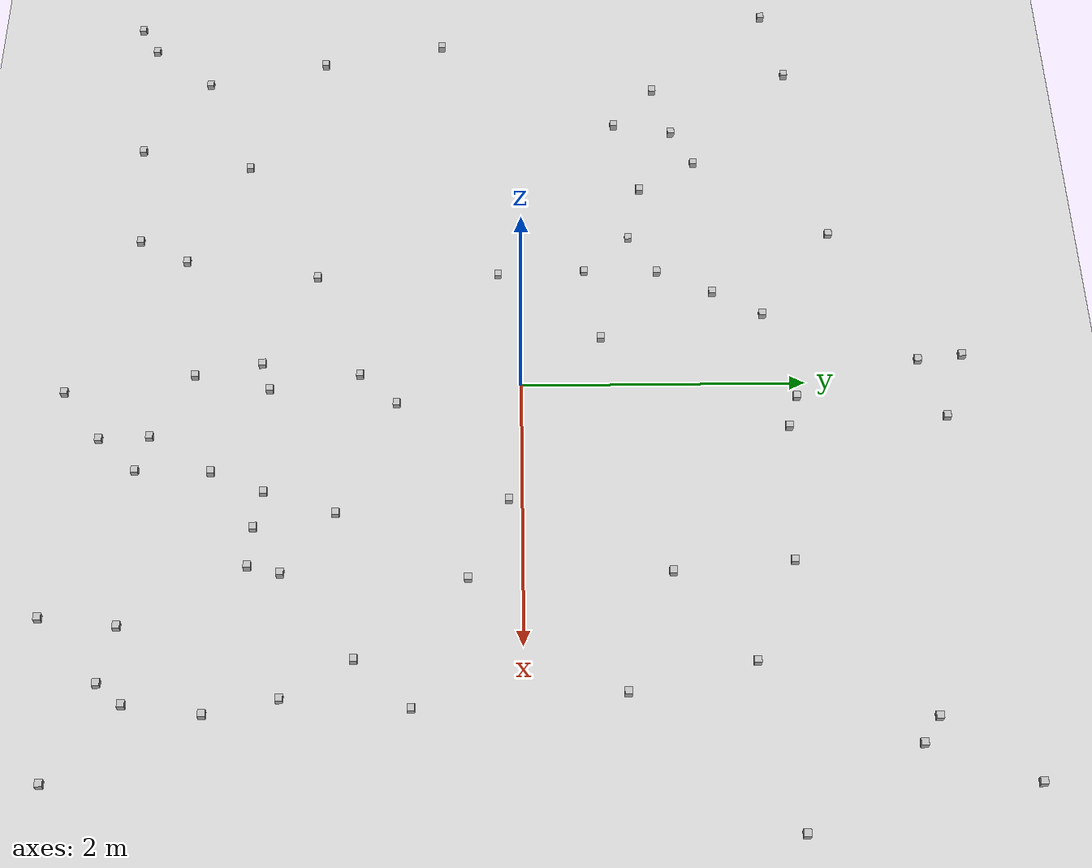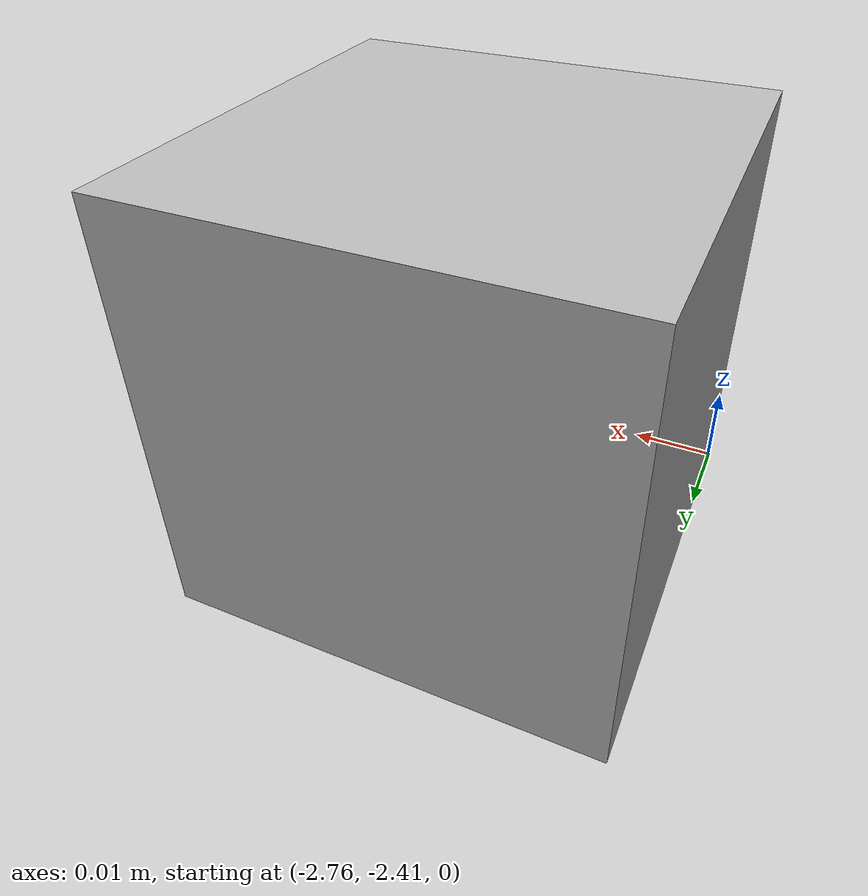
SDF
<sdf version="1.6">
 <world name="default">
  <model name="ground_plane">
   <static>1</static>
   <link name="link">
    <collision name="collision">
     <geometry><plane><normal>0 0 1</normal><size>100 100</size></plane></geometry>
     <surface><friction><ode><mu>100</mu><mu2>50</mu2></ode></friction></surface>
    </collision>
    <visual name="visual">
     <cast_shadows>0</cast_shadows>
     <geometry><plane><normal>0 0 1</normal><size>100 100</size></plane></geometry>
     <material>
      <script><uri>file://media/materials/scripts/gazebo.material</uri><name>Gazebo/Grey</name></script>
     </material>
    </visual>
   </link>
  </model>
  <light name="sun" type="directional">
   <pose>0 0 10 0 -0 0</pose>
   <diffuse>0.8 0.8 0.8 1</diffuse>
   <specular>0.1 0.1 0.1 1</specular>
   <attenuation>
    <range>1000</range>
    <constant>0.9</constant>
    <linear>0.01</linear>
    <quadratic>0.001</quadratic>
   </attenuation>
   <direction>-0.5 0.5 -1</direction>
  </light>
  <plugin name="SetupWorld" filename="libgazebo_plugins.so"/>
  <gravity>0 0 -9.8</gravity>
  <magnetic_field>6e-06 2.3e-05 -4.2e-05</magnetic_field>
  <atmosphere type="adiabatic"/>
  <physics name="default_physics" default="0" type="ode">
   <max_step_size>0.001</max_step_size>
   <real_time_factor>1</real_time_factor>
   <real_time_update_rate>1000</real_time_update_rate>
  </physics>
  <scene><ambient>0.4 0.4 0.4 1</ambient><background>0.7 0.7 0.7 1</background><shadows>1</shadows></scene>
  <spherical_coordinates>
   <surface_model>EARTH_WGS84</surface_model>
   <latitude_deg>0</latitude_deg>
   <longitude_deg>0</longitude_deg>
   <elevation>0</elevation>
   <heading_deg>0</heading_deg>
  </spherical_coordinates>
  <model name="at0">
   <static>0</static>
   <link name="link">
    <inertial>
     <mass>0.01</mass>
     <inertia><ixx>4e-05</ixx><ixy>0</ixy><ixz>0</ixz><iyy>4e-05</iyy><iyz>0</iyz><izz>4e-05</izz></inertia>
    </inertial>
    <visual name="visual">
     <geometry><box><size>0.05 0.05 0.05</size></box></geometry>
     <material>
      <script>
       <uri>model://at0/materials/scripts</uri>
       <uri>model://at0/materials/textures</uri>
       <name>at0/Diffuse</name>
      </script>
     </material>
    </visual>
    <collision name="collision">
     <geometry><box><size>0.05 0.05 0.05</size></box></geometry>
     <surface><friction><ode><mu>0.8</mu><mu2>0.7</mu2></ode></friction></surface>
    </collision>
   </link>
   <pose>-2.31328 0.718196 0.025 0 -0 0</pose>
  </model>
  <model name="at1">
   <static>0</static>
   <link name="link">
    <inertial>
     <mass>0.01</mass>
     <inertia><ixx>4e-05</ixx><ixy>0</ixy><ixz>0</ixz><iyy>4e-05</iyy><iyz>0</iyz><izz>4e-05</izz></inertia>
    </inertial>
    <visual name="visual">
     <geometry><box><size>0.05 0.05 0.05</size></box></geometry>
     <material>
      <script>
       <uri>model://at0/materials/scripts</uri>
       <uri>model://at0/materials/textures</uri>
       <name>at0/Diffuse</name>
      </script>
     </material>
    </visual>
    <collision name="collision">
     <geometry><box><size>0.05 0.05 0.05</size></box></geometry>
     <surface><friction><ode><mu>0.8</mu><mu2>0.7</mu2></ode></friction></surface>
    </collision>
   </link>
   <pose>-1.92508 -2.02939 0.025 0 -0 0</pose>
  </model>
  <model name="at2">
   <static>0</static>
   <link name="link">
    <inertial>
     <mass>0.01</mass>
     <inertia><ixx>4e-05</ixx><ixy>0</ixy><ixz>0</ixz><iyy>4e-05</iyy><iyz>0</iyz><izz>4e-05</izz></inertia>
    </inertial>
    <visual name="visual">
     <geometry><box><size>0.05 0.05 0.05</size></box></geometry>
     <material>
      <script>
       <uri>model://at0/materials/scripts</uri>
       <uri>model://at0/materials/textures</uri>
       <name>at0/Diffuse</name>
      </script>
     </material>
    </visual>
    <collision name="collision">
     <geometry><box><size>0.05 0.05 0.05</size></box></geometry>
     <surface><friction><ode><mu>0.8</mu><mu2>0.7</mu2></ode></friction></surface>
    </collision>
   </link>
   <pose>-2.7992 2.05665 0.025 0 -0 0</pose>
  </model>
  <model name="at3">
   <static>0</static>
   <link name="link">
    <inertial>
     <mass>0.01</mass>
     <inertia><ixx>4e-05</ixx><ixy>0</ixy><ixz>0</ixz><iyy>4e-05</iyy><iyz>0</iyz><izz>4e-05</izz></inertia>
    </inertial>
    <visual name="visual">
     <geometry><box><size>0.05 0.05 0.05</size></box></geometry>
     <material>
      <script>
       <uri>model://at0/materials/scripts</uri>
       <uri>model://at0/materials/textures</uri>
       <name>at0/Diffuse</name>
      </script>
     </material>
    </visual>
    <collision name="collision">
     <geometry><box><size>0.05 0.05 0.05</size></box></geometry>
     <surface><friction><ode><mu>0.8</mu><mu2>0.7</mu2></ode></friction></surface>
    </collision>
   </link>
   <pose>1.12049 -1.82396 0.025 0 -0 0</pose>
  </model>
  <model name="at4">
   <static>0</static>
   <link name="link">
    <inertial>
     <mass>0.01</mass>
     <inertia><ixx>4e-05</ixx><ixy>0</ixy><ixz>0</ixz><iyy>4e-05</iyy><iyz>0</iyz><izz>4e-05</izz></inertia>
    </inertial>
    <visual name="visual">
     <geometry><box><size>0.05 0.05 0.05</size></box></geometry>
     <material>
      <script>
       <uri>model://at0/materials/scripts</uri>
       <uri>model://at0/materials/textures</uri>
       <name>at0/Diffuse</name>
      </script>
     </material>
    </visual>
    <collision name="collision">
     <geometry><box><size>0.05 0.05 0.05</size></box></geometry>
     <surface><friction><ode><mu>0.8</mu><mu2>0.7</mu2></ode></friction></surface>
    </collision>
   </link>
   <pose>1.51113 -0.366996 0.025 0 -0 0</pose>
  </model>
  <model name="at5">
   <static>0</static>
   <link name="link">
    <inertial>
     <mass>0.01</mass>
     <inertia><ixx>4e-05</ixx><ixy>0</ixy><ixz>0</ixz><iyy>4e-05</iyy><iyz>0</iyz><izz>4e-05</izz></inertia>
    </inertial>
    <visual name="visual">
     <geometry><box><size>0.05 0.05 0.05</size></box></geometry>
     <material>
      <script>
       <uri>model://at0/materials/scripts</uri>
       <uri>model://at0/materials/textures</uri>
       <name>at0/Diffuse</name>
      </script>
     </material>
    </visual>
    <collision name="collision">
     <geometry><box><size>0.05 0.05 0.05</size></box></geometry>
     <surface><friction><ode><mu>0.8</mu><mu2>0.7</mu2></ode></friction></surface>
    </collision>
   </link>
   <pose>0.1537 -0.876322 0.025 0 -0 0</pose>
  </model>
  <model name="at6">
   <static>0</static>
   <link name="link">
    <inertial>
     <mass>0.01</mass>
     <inertia><ixx>4e-05</ixx><ixy>0</ixy><ixz>0</ixz><iyy>4e-05</iyy><iyz>0</iyz><izz>4e-05</izz></inertia>
    </inertial>
    <visual name="visual">
     <geometry><box><size>0.05 0.05 0.05</size></box></geometry>
     <material>
      <script>
       <uri>model://at0/materials/scripts</uri>
       <uri>model://at0/materials/textures</uri>
       <name>at0/Diffuse</name>
      </script>
     </material>
    </visual>
    <collision name="collision">
     <geometry><box><size>0.05 0.05 0.05</size></box></geometry>
     <surface><friction><ode><mu>0.8</mu><mu2>0.7</mu2></ode></friction></surface>
    </collision>
   </link>
   <pose>0.919466 -0.091126 0.025 0 -0 0</pose>
  </model>
  <model name="at7">
   <static>0</static>
   <link name="link">
    <inertial>
     <mass>0.01</mass>
     <inertia><ixx>4e-05</ixx><ixy>0</ixy><ixz>0</ixz><iyy>4e-05</iyy><iyz>0</iyz><izz>4e-05</izz></inertia>
    </inertial>
    <visual name="visual">
     <geometry><box><size>0.05 0.05 0.05</size></box></geometry>
     <material>
      <script>
       <uri>model://at0/materials/scripts</uri>
       <uri>model://at0/materials/textures</uri>
       <name>at0/Diffuse</name>
      </script>
     </material>
    </visual>
    <collision name="collision">
     <geometry><box><size>0.05 0.05 0.05</size></box></geometry>
     <surface><friction><ode><mu>0.8</mu><mu2>0.7</mu2></ode></friction></surface>
    </collision>
   </link>
   <pose>-3.07516 -2.83013 0.025 0 -0 0</pose>
  </model>
  <model name="at8">
   <static>0</static>
   <link name="link">
    <inertial>
     <mass>0.01</mass>
     <inertia><ixx>4e-05</ixx><ixy>0</ixy><ixz>0</ixz><iyy>4e-05</iyy><iyz>0</iyz><izz>4e-05</izz></inertia>
    </inertial>
    <visual name="visual">
     <geometry><box><size>0.05 0.05 0.05</size></box></geometry>
     <material>
      <script>
       <uri>model://at0/materials/scripts</uri>
       <uri>model://at0/materials/textures</uri>
       <name>at0/Diffuse</name>
      </script>
     </material>
    </visual>
    <collision name="collision">
     <geometry><box><size>0.05 0.05 0.05</size></box></geometry>
     <surface><friction><ode><mu>0.8</mu><mu2>0.7</mu2></ode></friction></surface>
    </collision>
   </link>
   <pose>-0.92284 -1.47762 0.025 0 -0 0</pose>
  </model>
  <model name="at9">
   <static>0</static>
   <link name="link">
    <inertial>
     <mass>0.01</mass>
     <inertia><ixx>4e-05</ixx><ixy>0</ixy><ixz>0</ixz><iyy>4e-05</iyy><iyz>0</iyz><izz>4e-05</izz></inertia>
    </inertial>
    <visual name="visual">
     <geometry><box><size>0.05 0.05 0.05</size></box></geometry>
     <material>
      <script>
       <uri>model://at0/materials/scripts</uri>
       <uri>model://at0/materials/textures</uri>
       <name>at0/Diffuse</name>
      </script>
     </material>
    </visual>
    <collision name="collision">
     <geometry><box><size>0.05 0.05 0.05</size></box></geometry>
     <surface><friction><ode><mu>0.8</mu><mu2>0.7</mu2></ode></friction></surface>
    </collision>
   </link>
   <pose>2.4371 -0.727388 0.025 0 -0 0</pose>
  </model>
  <model name="at10">
   <static>0</static>
   <link name="link">
    <inertial>
     <mass>0.01</mass>
     <inertia><ixx>4e-05</ixx><ixy>0</ixy><ixz>0</ixz><iyy>4e-05</iyy><iyz>0</iyz><izz>4e-05</izz></inertia>
    </inertial>
    <visual name="visual">
     <geometry><box><size>0.05 0.05 0.05</size></box></geometry>
     <material>
      <script>
       <uri>model://at0/materials/scripts</uri>
       <uri>model://at0/materials/textures</uri>
       <name>at0/Diffuse</name>
      </script>
     </material>
    </visual>
    <collision name="collision">
     <geometry><box><size>0.05 0.05 0.05</size></box></geometry>
     <surface><friction><ode><mu>0.8</mu><mu2>0.7</mu2></ode></friction></surface>
    </collision>
   </link>
   <pose>3.28916 1.74837 0.025 0 -0 0</pose>
  </model>
  <model name="at11">
   <static>0</static>
   <link name="link">
    <inertial>
     <mass>0.01</mass>
     <inertia><ixx>4e-05</ixx><ixy>0</ixy><ixz>0</ixz><iyy>4e-05</iyy><iyz>0</iyz><izz>4e-05</izz></inertia>
    </inertial>
    <visual name="visual">
     <geometry><box><size>0.05 0.05 0.05</size></box></geometry>
     <material>
      <script>
       <uri>model://at0/materials/scripts</uri>
       <uri>model://at0/materials/textures</uri>
       <name>at0/Diffuse</name>
      </script>
     </material>
    </visual>
    <collision name="collision">
     <geometry><box><size>0.05 0.05 0.05</size></box></geometry>
     <surface><friction><ode><mu>0.8</mu><mu2>0.7</mu2></ode></friction></surface>
    </collision>
   </link>
   <pose>2.46683 -2.0684 0.025 0 -0 0</pose>
  </model>
  <model name="at12">
   <static>0</static>
   <link name="link">
    <inertial>
     <mass>0.01</mass>
     <inertia><ixx>4e-05</ixx><ixy>0</ixy><ixz>0</ixz><iyy>4e-05</iyy><iyz>0</iyz><izz>4e-05</izz></inertia>
    </inertial>
    <visual name="visual">
     <geometry><box><size>0.05 0.05 0.05</size></box></geometry>
     <material>
      <script>
       <uri>model://at0/materials/scripts</uri>
       <uri>model://at0/materials/textures</uri>
       <name>at0/Diffuse</name>
      </script>
     </material>
    </visual>
    <collision name="collision">
     <geometry><box><size>0.05 0.05 0.05</size></box></geometry>
     <surface><friction><ode><mu>0.8</mu><mu2>0.7</mu2></ode></friction></surface>
    </collision>
   </link>
   <pose>2.33458 0.673578 0.025 0 -0 0</pose>
  </model>
  <model name="at13">
   <static>0</static>
   <link name="link">
    <inertial>
     <mass>0.01</mass>
     <inertia><ixx>4e-05</ixx><ixy>0</ixy><ixz>0</ixz><iyy>4e-05</iyy><iyz>0</iyz><izz>4e-05</izz></inertia>
    </inertial>
    <visual name="visual">
     <geometry><box><size>0.05 0.05 0.05</size></box></geometry>
     <material>
      <script>
       <uri>model://at0/materials/scripts</uri>
       <uri>model://at0/materials/textures</uri>
       <name>at0/Diffuse</name>
      </script>
     </material>
    </visual>
    <collision name="collision">
     <geometry><box><size>0.05 0.05 0.05</size></box></geometry>
     <surface><friction><ode><mu>0.8</mu><mu2>0.7</mu2></ode></friction></surface>
    </collision>
   </link>
   <pose>2.51743 2.6601 0.025 0 -0 0</pose>
  </model>
  <model name="at14">
   <static>0</static>
   <link name="link">
    <inertial>
     <mass>0.01</mass>
     <inertia><ixx>4e-05</ixx><ixy>0</ixy><ixz>0</ixz><iyy>4e-05</iyy><iyz>0</iyz><izz>4e-05</izz></inertia>
    </inertial>
    <visual name="visual">
     <geometry><box><size>0.05 0.05 0.05</size></box></geometry>
     <material>
      <script>
       <uri>model://at0/materials/scripts</uri>
       <uri>model://at0/materials/textures</uri>
       <name>at0/Diffuse</name>
      </script>
     </material>
    </visual>
    <collision name="collision">
     <geometry><box><size>0.05 0.05 0.05</size></box></geometry>
     <surface><friction><ode><mu>0.8</mu><mu2>0.7</mu2></ode></friction></surface>
    </collision>
   </link>
   <pose>-3.39269 1.91585 0.025 0 -0 0</pose>
  </model>
  <model name="at15">
   <static>0</static>
   <link name="link">
    <inertial>
     <mass>0.01</mass>
     <inertia><ixx>4e-05</ixx><ixy>0</ixy><ixz>0</ixz><iyy>4e-05</iyy><iyz>0</iyz><izz>4e-05</izz></inertia>
    </inertial>
    <visual name="visual">
     <geometry><box><size>0.05 0.05 0.05</size></box></geometry>
     <material>
      <script>
       <uri>model://at0/materials/scripts</uri>
       <uri>model://at0/materials/textures</uri>
       <name>at0/Diffuse</name>
      </script>
     </material>
    </visual>
    <collision name="collision">
     <geometry><box><size>0.05 0.05 0.05</size></box></geometry>
     <surface><friction><ode><mu>0.8</mu><mu2>0.7</mu2></ode></friction></surface>
    </collision>
   </link>
   <pose>-0.087941 -2.30596 0.025 0 -0 0</pose>
  </model>
  <model name="at16">
   <static>0</static>
   <link name="link">
    <inertial>
     <mass>0.01</mass>
     <inertia><ixx>4e-05</ixx><ixy>0</ixy><ixz>0</ixz><iyy>4e-05</iyy><iyz>0</iyz><izz>4e-05</izz></inertia>
    </inertial>
    <visual name="visual">
     <geometry><box><size>0.05 0.05 0.05</size></box></geometry>
     <material>
      <script>
       <uri>model://at0/materials/scripts</uri>
       <uri>model://at0/materials/textures</uri>
       <name>at0/Diffuse</name>
      </script>
     </material>
    </visual>
    <collision name="collision">
     <geometry><box><size>0.05 0.05 0.05</size></box></geometry>
     <surface><friction><ode><mu>0.8</mu><mu2>0.7</mu2></ode></friction></surface>
    </collision>
   </link>
   <pose>-0.765951 1.38699 0.025 0 -0 0</pose>
  </model>
  <model name="at17">
   <static>0</static>
   <link name="link">
    <inertial>
     <mass>0.01</mass>
     <inertia><ixx>4e-05</ixx><ixy>0</ixy><ixz>0</ixz><iyy>4e-05</iyy><iyz>0</iyz><izz>4e-05</izz></inertia>
    </inertial>
    <visual name="visual">
     <geometry><box><size>0.05 0.05 0.05</size></box></geometry>
     <material>
      <script>
       <uri>model://at0/materials/scripts</uri>
       <uri>model://at0/materials/textures</uri>
       <name>at0/Diffuse</name>
      </script>
     </material>
    </visual>
    <collision name="collision">
     <geometry><box><size>0.05 0.05 0.05</size></box></geometry>
     <surface><friction><ode><mu>0.8</mu><mu2>0.7</mu2></ode></friction></surface>
    </collision>
   </link>
   <pose>-0.935355 -0.165153 0.025 0 -0 0</pose>
  </model>
  <model name="at18">
   <static>0</static>
   <link name="link">
    <inertial>
     <mass>0.01</mass>
     <inertia><ixx>4e-05</ixx><ixy>0</ixy><ixz>0</ixz><iyy>4e-05</iyy><iyz>0</iyz><izz>4e-05</izz></inertia>
    </inertial>
    <visual name="visual">
     <geometry><box><size>0.05 0.05 0.05</size></box></geometry>
     <material>
      <script>
       <uri>model://at0/materials/scripts</uri>
       <uri>model://at0/materials/textures</uri>
       <name>at0/Diffuse</name>
      </script>
     </material>
    </visual>
    <collision name="collision">
     <geometry><box><size>0.05 0.05 0.05</size></box></geometry>
     <surface><friction><ode><mu>0.8</mu><mu2>0.7</mu2></ode></friction></surface>
    </collision>
   </link>
   <pose>0.043636 -3.21487 0.025 0 -0 0</pose>
  </model>
  <model name="at19">
   <static>0</static>
   <link name="link">
    <inertial>
     <mass>0.01</mass>
     <inertia><ixx>4e-05</ixx><ixy>0</ixy><ixz>0</ixz><iyy>4e-05</iyy><iyz>0</iyz><izz>4e-05</izz></inertia>
    </inertial>
    <visual name="visual">
     <geometry><box><size>0.05 0.05 0.05</size></box></geometry>
     <material>
      <script>
       <uri>model://at0/materials/scripts</uri>
       <uri>model://at0/materials/textures</uri>
       <name>at0/Diffuse</name>
      </script>
     </material>
    </visual>
    <collision name="collision">
     <geometry><box><size>0.05 0.05 0.05</size></box></geometry>
     <surface><friction><ode><mu>0.8</mu><mu2>0.7</mu2></ode></friction></surface>
    </collision>
   </link>
   <pose>1.41089 -1.84523 0.025 0 -0 0</pose>
  </model>
  <model name="at20">
   <static>0</static>
   <link name="link">
    <inertial>
     <mass>0.01</mass>
     <inertia><ixx>4e-05</ixx><ixy>0</ixy><ixz>0</ixz><iyy>4e-05</iyy><iyz>0</iyz><izz>4e-05</izz></inertia>
    </inertial>
    <visual name="visual">
     <geometry><box><size>0.05 0.05 0.05</size></box></geometry>
     <material>
      <script>
       <uri>model://at0/materials/scripts</uri>
       <uri>model://at0/materials/textures</uri>
       <name>at0/Diffuse</name>
      </script>
     </material>
    </visual>
    <collision name="collision">
     <geometry><box><size>0.05 0.05 0.05</size></box></geometry>
     <surface><friction><ode><mu>0.8</mu><mu2>0.7</mu2></ode></friction></surface>
    </collision>
   </link>
   <pose>-0.181866 -1.83541 0.025 0 -0 0</pose>
  </model>
  <model name="at21">
   <static>0</static>
   <link name="link">
    <inertial>
     <mass>0.01</mass>
     <inertia><ixx>4e-05</ixx><ixy>0</ixy><ixz>0</ixz><iyy>4e-05</iyy><iyz>0</iyz><izz>4e-05</izz></inertia>
    </inertial>
    <visual name="visual">
     <geometry><box><size>0.05 0.05 0.05</size></box></geometry>
     <material>
      <script>
       <uri>model://at0/materials/scripts</uri>
       <uri>model://at0/materials/textures</uri>
       <name>at0/Diffuse</name>
      </script>
     </material>
    </visual>
    <collision name="collision">
     <geometry><box><size>0.05 0.05 0.05</size></box></geometry>
     <surface><friction><ode><mu>0.8</mu><mu2>0.7</mu2></ode></friction></surface>
    </collision>
   </link>
   <pose>0.678445 -2.6624 0.025 0 -0 0</pose>
  </model>
  <model name="at22">
   <static>0</static>
   <link name="link">
    <inertial>
     <mass>0.01</mass>
     <inertia><ixx>4e-05</ixx><ixy>0</ixy><ixz>0</ixz><iyy>4e-05</iyy><iyz>0</iyz><izz>4e-05</izz></inertia>
    </inertial>
    <visual name="visual">
     <geometry><box><size>0.05 0.05 0.05</size></box></geometry>
     <material>
      <script>
       <uri>model://at0/materials/scripts</uri>
       <uri>model://at0/materials/textures</uri>
       <name>at0/Diffuse</name>
      </script>
     </material>
    </visual>
    <collision name="collision">
     <geometry><box><size>0.05 0.05 0.05</size></box></geometry>
     <surface><friction><ode><mu>0.8</mu><mu2>0.7</mu2></ode></friction></surface>
    </collision>
   </link>
   <pose>1.47346 1.00328 0.025 0 -0 0</pose>
  </model>
  <model name="at23">
   <static>0</static>
   <link name="link">
    <inertial>
     <mass>0.01</mass>
     <inertia><ixx>4e-05</ixx><ixy>0</ixy><ixz>0</ixz><iyy>4e-05</iyy><iyz>0</iyz><izz>4e-05</izz></inertia>
    </inertial>
    <visual name="visual">
     <geometry><box><size>0.05 0.05 0.05</size></box></geometry>
     <material>
      <script>
       <uri>model://at0/materials/scripts</uri>
       <uri>model://at0/materials/textures</uri>
       <name>at0/Diffuse</name>
      </script>
     </material>
    </visual>
    <collision name="collision">
     <geometry><box><size>0.05 0.05 0.05</size></box></geometry>
     <surface><friction><ode><mu>0.8</mu><mu2>0.7</mu2></ode></friction></surface>
    </collision>
   </link>
   <pose>-2.09253 -2.84938 0.025 0 -0 0</pose>
  </model>
  <model name="at24">
   <static>0</static>
   <link name="link">
    <inertial>
     <mass>0.01</mass>
     <inertia><ixx>4e-05</ixx><ixy>0</ixy><ixz>0</ixz><iyy>4e-05</iyy><iyz>0</iyz><izz>4e-05</izz></inertia>
    </inertial>
    <visual name="visual">
     <geometry><box><size>0.05 0.05 0.05</size></box></geometry>
     <material>
      <script>
       <uri>model://at0/materials/scripts</uri>
       <uri>model://at0/materials/textures</uri>
       <name>at0/Diffuse</name>
      </script>
     </material>
    </visual>
    <collision name="collision">
     <geometry><box><size>0.05 0.05 0.05</size></box></geometry>
     <surface><friction><ode><mu>0.8</mu><mu2>0.7</mu2></ode></friction></surface>
    </collision>
   </link>
   <pose>2.92566 -3.05542 0.025 0 -0 0</pose>
  </model>
  <model name="at25">
   <static>0</static>
   <link name="link">
    <inertial>
     <mass>0.01</mass>
     <inertia><ixx>4e-05</ixx><ixy>0</ixy><ixz>0</ixz><iyy>4e-05</iyy><iyz>0</iyz><izz>4e-05</izz></inertia>
    </inertial>
    <visual name="visual">
     <geometry><box><size>0.05 0.05 0.05</size></box></geometry>
     <material>
      <script>
       <uri>model://at0/materials/scripts</uri>
       <uri>model://at0/materials/textures</uri>
       <name>at0/Diffuse</name>
      </script>
     </material>
    </visual>
    <collision name="collision">
     <geometry><box><size>0.05 0.05 0.05</size></box></geometry>
     <surface><friction><ode><mu>0.8</mu><mu2>0.7</mu2></ode></friction></surface>
    </collision>
   </link>
   <pose>-0.176769 2.81482 0.025 0 -0 0</pose>
  </model>
  <model name="at26">
   <static>0</static>
   <link name="link">
    <inertial>
     <mass>0.01</mass>
     <inertia><ixx>4e-05</ixx><ixy>0</ixy><ixz>0</ixz><iyy>4e-05</iyy><iyz>0</iyz><izz>4e-05</izz></inertia>
    </inertial>
    <visual name="visual">
     <geometry><box><size>0.05 0.05 0.05</size></box></geometry>
     <material>
      <script>
       <uri>model://at0/materials/scripts</uri>
       <uri>model://at0/materials/textures</uri>
       <name>at0/Diffuse</name>
      </script>
     </material>
    </visual>
    <collision name="collision">
     <geometry><box><size>0.05 0.05 0.05</size></box></geometry>
     <surface><friction><ode><mu>0.8</mu><mu2>0.7</mu2></ode></friction></surface>
    </collision>
   </link>
   <pose>2.09295 -1.10994 0.025 0 -0 0</pose>
  </model>
  <model name="at27">
   <static>0</static>
   <link name="link">
    <inertial>
     <mass>0.01</mass>
     <inertia><ixx>4e-05</ixx><ixy>0</ixy><ixz>0</ixz><iyy>4e-05</iyy><iyz>0</iyz><izz>4e-05</izz></inertia>
    </inertial>
    <visual name="visual">
     <geometry><box><size>0.05 0.05 0.05</size></box></geometry>
     <material>
      <script>
       <uri>model://at0/materials/scripts</uri>
       <uri>model://at0/materials/textures</uri>
       <name>at0/Diffuse</name>
      </script>
     </material>
    </visual>
    <collision name="collision">
     <geometry><box><size>0.05 0.05 0.05</size></box></geometry>
     <surface><friction><ode><mu>0.8</mu><mu2>0.7</mu2></ode></friction></surface>
    </collision>
   </link>
   <pose>-2.65358 1.02753 0.025 0 -0 0</pose>
  </model>
  <model name="at28">
   <static>0</static>
   <link name="link">
    <inertial>
     <mass>0.01</mass>
     <inertia><ixx>4e-05</ixx><ixy>0</ixy><ixz>0</ixz><iyy>4e-05</iyy><iyz>0</iyz><izz>4e-05</izz></inertia>
    </inertial>
    <visual name="visual">
     <geometry><box><size>0.05 0.05 0.05</size></box></geometry>
     <material>
      <script>
       <uri>model://at0/materials/scripts</uri>
       <uri>model://at0/materials/textures</uri>
       <name>at0/Diffuse</name>
      </script>
     </material>
    </visual>
    <collision name="collision">
     <geometry><box><size>0.05 0.05 0.05</size></box></geometry>
     <surface><friction><ode><mu>0.8</mu><mu2>0.7</mu2></ode></friction></surface>
    </collision>
   </link>
   <pose>2.96363 3.26384 0.025 0 -0 0</pose>
  </model>
  <model name="at29">
   <static>0</static>
   <link name="link">
    <inertial>
     <mass>0.01</mass>
     <inertia><ixx>4e-05</ixx><ixy>0</ixy><ixz>0</ixz><iyy>4e-05</iyy><iyz>0</iyz><izz>4e-05</izz></inertia>
    </inertial>
    <visual name="visual">
     <geometry><box><size>0.05 0.05 0.05</size></box></geometry>
     <material>
      <script>
       <uri>model://at0/materials/scripts</uri>
       <uri>model://at0/materials/textures</uri>
       <name>at0/Diffuse</name>
      </script>
     </material>
    </visual>
    <collision name="collision">
     <geometry><box><size>0.05 0.05 0.05</size></box></geometry>
     <surface><friction><ode><mu>0.8</mu><mu2>0.7</mu2></ode></friction></surface>
    </collision>
   </link>
   <pose>0.287628 2.97095 0.025 0 -0 0</pose>
  </model>
  <model name="at30">
   <static>0</static>
   <link name="link">
    <inertial>
     <mass>0.01</mass>
     <inertia><ixx>4e-05</ixx><ixy>0</ixy><ixz>0</ixz><iyy>4e-05</iyy><iyz>0</iyz><izz>4e-05</izz></inertia>
    </inertial>
    <visual name="visual">
     <geometry><box><size>0.05 0.05 0.05</size></box></geometry>
     <material>
      <script>
       <uri>model://at0/materials/scripts</uri>
       <uri>model://at0/materials/textures</uri>
       <name>at0/Diffuse</name>
      </script>
     </material>
    </visual>
    <collision name="collision">
     <geometry><box><size>0.05 0.05 0.05</size></box></geometry>
     <surface><friction><ode><mu>0.8</mu><mu2>0.7</mu2></ode></friction></surface>
    </collision>
   </link>
   <pose>1.7797 -3.20031 0.025 0 -0 0</pose>
  </model>
  <model name="at31">
   <static>0</static>
   <link name="link">
    <inertial>
     <mass>0.01</mass>
     <inertia><ixx>4e-05</ixx><ixy>0</ixy><ixz>0</ixz><iyy>4e-05</iyy><iyz>0</iyz><izz>4e-05</izz></inertia>
    </inertial>
    <visual name="visual">
     <geometry><box><size>0.05 0.05 0.05</size></box></geometry>
     <material>
      <script>
       <uri>model://at0/materials/scripts</uri>
       <uri>model://at0/materials/textures</uri>
       <name>at0/Diffuse</name>
      </script>
     </material>
    </visual>
    <collision name="collision">
     <geometry><box><size>0.05 0.05 0.05</size></box></geometry>
     <surface><friction><ode><mu>0.8</mu><mu2>0.7</mu2></ode></friction></surface>
    </collision>
   </link>
   <pose>-2.73501 -2.38625 0.025 0 -0 0</pose>
  </model>
  <model name="at32">
   <static>0</static>
   <link name="link">
    <inertial>
     <mass>0.01</mass>
     <inertia><ixx>4e-05</ixx><ixy>0</ixy><ixz>0</ixz><iyy>4e-05</iyy><iyz>0</iyz><izz>4e-05</izz></inertia>
    </inertial>
    <visual name="visual">
     <geometry><box><size>0.05 0.05 0.05</size></box></geometry>
     <material>
      <script>
       <uri>model://at0/materials/scripts</uri>
       <uri>model://at0/materials/textures</uri>
       <name>at0/Diffuse</name>
      </script>
     </material>
    </visual>
    <collision name="collision">
     <geometry><box><size>0.05 0.05 0.05</size></box></geometry>
     <surface><friction><ode><mu>0.8</mu><mu2>0.7</mu2></ode></friction></surface>
    </collision>
   </link>
   <pose>0.848593 -1.76969 0.025 0 -0 0</pose>
  </model>
  <model name="at33">
   <static>0</static>
   <link name="link">
    <inertial>
     <mass>0.01</mass>
     <inertia><ixx>4e-05</ixx><ixy>0</ixy><ixz>0</ixz><iyy>4e-05</iyy><iyz>0</iyz><izz>4e-05</izz></inertia>
    </inertial>
    <visual name="visual">
     <geometry><box><size>0.05 0.05 0.05</size></box></geometry>
     <material>
      <script>
       <uri>model://at0/materials/scripts</uri>
       <uri>model://at0/materials/textures</uri>
       <name>at0/Diffuse</name>
      </script>
     </material>
    </visual>
    <collision name="collision">
     <geometry><box><size>0.05 0.05 0.05</size></box></geometry>
     <surface><friction><ode><mu>0.8</mu><mu2>0.7</mu2></ode></friction></surface>
    </collision>
   </link>
   <pose>-0.085241 -1.14052 0.025 0 -0 0</pose>
  </model>
  <model name="at34">
   <static>0</static>
   <link name="link">
    <inertial>
     <mass>0.01</mass>
     <inertia><ixx>4e-05</ixx><ixy>0</ixy><ixz>0</ixz><iyy>4e-05</iyy><iyz>0</iyz><izz>4e-05</izz></inertia>
    </inertial>
    <visual name="visual">
     <geometry><box><size>0.05 0.05 0.05</size></box></geometry>
     <material>
      <script>
       <uri>model://at0/materials/scripts</uri>
       <uri>model://at0/materials/textures</uri>
       <name>at0/Diffuse</name>
      </script>
     </material>
    </visual>
    <collision name="collision">
     <geometry><box><size>0.05 0.05 0.05</size></box></geometry>
     <surface><friction><ode><mu>0.8</mu><mu2>0.7</mu2></ode></friction></surface>
    </collision>
   </link>
   <pose>-0.214924 3.13289 0.025 0 -0 0</pose>
  </model>
  <model name="at35">
   <static>0</static>
   <link name="link">
    <inertial>
     <mass>0.01</mass>
     <inertia><ixx>4e-05</ixx><ixy>0</ixy><ixz>0</ixz><iyy>4e-05</iyy><iyz>0</iyz><izz>4e-05</izz></inertia>
    </inertial>
    <visual name="visual">
     <geometry><box><size>0.05 0.05 0.05</size></box></geometry>
     <material>
      <script>
       <uri>model://at0/materials/scripts</uri>
       <uri>model://at0/materials/textures</uri>
       <name>at0/Diffuse</name>
      </script>
     </material>
    </visual>
    <collision name="collision">
     <geometry><box><size>0.05 0.05 0.05</size></box></geometry>
     <surface><friction><ode><mu>0.8</mu><mu2>0.7</mu2></ode></friction></surface>
    </collision>
   </link>
   <pose>0.424064 -2.93648 0.025 0 -0 0</pose>
  </model>
  <model name="at36">
   <static>0</static>
   <link name="link">
    <inertial>
     <mass>0.01</mass>
     <inertia><ixx>4e-05</ixx><ixy>0</ixy><ixz>0</ixz><iyy>4e-05</iyy><iyz>0</iyz><izz>4e-05</izz></inertia>
    </inertial>
    <visual name="visual">
     <geometry><box><size>0.05 0.05 0.05</size></box></geometry>
     <material>
      <script>
       <uri>model://at0/materials/scripts</uri>
       <uri>model://at0/materials/textures</uri>
       <name>at0/Diffuse</name>
      </script>
     </material>
    </visual>
    <collision name="collision">
     <geometry><box><size>0.05 0.05 0.05</size></box></geometry>
     <surface><friction><ode><mu>0.8</mu><mu2>0.7</mu2></ode></friction></surface>
    </collision>
   </link>
   <pose>-2.92951 -1.50248 0.025 0 -0 0</pose>
  </model>
  <model name="at37">
   <static>0</static>
   <link name="link">
    <inertial>
     <mass>0.01</mass>
     <inertia><ixx>4e-05</ixx><ixy>0</ixy><ixz>0</ixz><iyy>4e-05</iyy><iyz>0</iyz><izz>4e-05</izz></inertia>
    </inertial>
    <visual name="visual">
     <geometry><box><size>0.05 0.05 0.05</size></box></geometry>
     <material>
      <script>
       <uri>model://at0/materials/scripts</uri>
       <uri>model://at0/materials/textures</uri>
       <name>at0/Diffuse</name>
      </script>
     </material>
    </visual>
    <collision name="collision">
     <geometry><box><size>0.05 0.05 0.05</size></box></geometry>
     <surface><friction><ode><mu>0.8</mu><mu2>0.7</mu2></ode></friction></surface>
    </collision>
   </link>
   <pose>1.4668 -1.62203 0.025 0 -0 0</pose>
  </model>
  <model name="at38">
   <static>0</static>
   <link name="link">
    <inertial>
     <mass>0.01</mass>
     <inertia><ixx>4e-05</ixx><ixy>0</ixy><ixz>0</ixz><iyy>4e-05</iyy><iyz>0</iyz><izz>4e-05</izz></inertia>
    </inertial>
    <visual name="visual">
     <geometry><box><size>0.05 0.05 0.05</size></box></geometry>
     <material>
      <script>
       <uri>model://at0/materials/scripts</uri>
       <uri>model://at0/materials/textures</uri>
       <name>at0/Diffuse</name>
      </script>
     </material>
    </visual>
    <collision name="collision">
     <geometry><box><size>0.05 0.05 0.05</size></box></geometry>
     <surface><friction><ode><mu>0.8</mu><mu2>0.7</mu2></ode></friction></surface>
    </collision>
   </link>
   <pose>-0.951856 0.992469 0.025 0 -0 0</pose>
  </model>
  <model name="at39">
   <static>0</static>
   <link name="link">
    <inertial>
     <mass>0.01</mass>
     <inertia><ixx>4e-05</ixx><ixy>0</ixy><ixz>0</ixz><iyy>4e-05</iyy><iyz>0</iyz><izz>4e-05</izz></inertia>
    </inertial>
    <visual name="visual">
     <geometry><box><size>0.05 0.05 0.05</size></box></geometry>
     <material>
      <script>
       <uri>model://at0/materials/scripts</uri>
       <uri>model://at0/materials/textures</uri>
       <name>at0/Diffuse</name>
      </script>
     </material>
    </visual>
    <collision name="collision">
     <geometry><box><size>0.05 0.05 0.05</size></box></geometry>
     <surface><friction><ode><mu>0.8</mu><mu2>0.7</mu2></ode></friction></surface>
    </collision>
   </link>
   <pose>-1.27746 2.27138 0.025 0 -0 0</pose>
  </model>
  <model name="at40">
   <static>0</static>
   <link name="link">
    <inertial>
     <mass>0.01</mass>
     <inertia><ixx>4e-05</ixx><ixy>0</ixy><ixz>0</ixz><iyy>4e-05</iyy><iyz>0</iyz><izz>4e-05</izz></inertia>
    </inertial>
    <visual name="visual">
     <geometry><box><size>0.05 0.05 0.05</size></box></geometry>
     <material>
      <script>
       <uri>model://at0/materials/scripts</uri>
       <uri>model://at0/materials/textures</uri>
       <name>at0/Diffuse</name>
      </script>
     </material>
    </visual>
    <collision name="collision">
     <geometry><box><size>0.05 0.05 0.05</size></box></geometry>
     <surface><friction><ode><mu>0.8</mu><mu2>0.7</mu2></ode></friction></surface>
    </collision>
   </link>
   <pose>0.407289 -2.58451 0.025 0 -0 0</pose>
  </model>
  <model name="at41">
   <static>0</static>
   <link name="link">
    <inertial>
     <mass>0.01</mass>
     <inertia><ixx>4e-05</ixx><ixy>0</ixy><ixz>0</ixz><iyy>4e-05</iyy><iyz>0</iyz><izz>4e-05</izz></inertia>
    </inertial>
    <visual name="visual">
     <geometry><box><size>0.05 0.05 0.05</size></box></geometry>
     <material>
      <script>
       <uri>model://at0/materials/scripts</uri>
       <uri>model://at0/materials/textures</uri>
       <name>at0/Diffuse</name>
      </script>
     </material>
    </visual>
    <collision name="collision">
     <geometry><box><size>0.05 0.05 0.05</size></box></geometry>
     <surface><friction><ode><mu>0.8</mu><mu2>0.7</mu2></ode></friction></surface>
    </collision>
   </link>
   <pose>-2.23857 1.15371 0.025 0 -0 0</pose>
  </model>
  <model name="at42">
   <static>0</static>
   <link name="link">
    <inertial>
     <mass>0.01</mass>
     <inertia><ixx>4e-05</ixx><ixy>0</ixy><ixz>0</ixz><iyy>4e-05</iyy><iyz>0</iyz><izz>4e-05</izz></inertia>
    </inertial>
    <visual name="visual">
     <geometry><box><size>0.05 0.05 0.05</size></box></geometry>
     <material>
      <script>
       <uri>model://at0/materials/scripts</uri>
       <uri>model://at0/materials/textures</uri>
       <name>at0/Diffuse</name>
      </script>
     </material>
    </visual>
    <collision name="collision">
     <geometry><box><size>0.05 0.05 0.05</size></box></geometry>
     <surface><friction><ode><mu>0.8</mu><mu2>0.7</mu2></ode></friction></surface>
    </collision>
   </link>
   <pose>1.84302 -2.67493 0.025 0 -0 0</pose>
  </model>
  <model name="at43">
   <static>0</static>
   <link name="link">
    <inertial>
     <mass>0.01</mass>
     <inertia><ixx>4e-05</ixx><ixy>0</ixy><ixz>0</ixz><iyy>4e-05</iyy><iyz>0</iyz><izz>4e-05</izz></inertia>
    </inertial>
    <visual name="visual">
     <geometry><box><size>0.05 0.05 0.05</size></box></geometry>
     <material>
      <script>
       <uri>model://at0/materials/scripts</uri>
       <uri>model://at0/materials/textures</uri>
       <name>at0/Diffuse</name>
      </script>
     </material>
    </visual>
    <collision name="collision">
     <geometry><box><size>0.05 0.05 0.05</size></box></geometry>
     <surface><friction><ode><mu>0.8</mu><mu2>0.7</mu2></ode></friction></surface>
    </collision>
   </link>
   <pose>1.01755 -1.26936 0.025 0 -0 0</pose>
  </model>
  <model name="at44">
   <static>0</static>
   <link name="link">
    <inertial>
     <mass>0.01</mass>
     <inertia><ixx>4e-05</ixx><ixy>0</ixy><ixz>0</ixz><iyy>4e-05</iyy><iyz>0</iyz><izz>4e-05</izz></inertia>
    </inertial>
    <visual name="visual">
     <geometry><box><size>0.05 0.05 0.05</size></box></geometry>
     <material>
      <script>
       <uri>model://at0/materials/scripts</uri>
       <uri>model://at0/materials/textures</uri>
       <name>at0/Diffuse</name>
      </script>
     </material>
    </visual>
    <collision name="collision">
     <geometry><box><size>0.05 0.05 0.05</size></box></geometry>
     <surface><friction><ode><mu>0.8</mu><mu2>0.7</mu2></ode></friction></surface>
    </collision>
   </link>
   <pose>-3.10398 -0.602753 0.025 0 -0 0</pose>
  </model>
  <model name="at45">
   <static>0</static>
   <link name="link">
    <inertial>
     <mass>0.01</mass>
     <inertia><ixx>4e-05</ixx><ixy>0</ixy><ixz>0</ixz><iyy>4e-05</iyy><iyz>0</iyz><izz>4e-05</izz></inertia>
    </inertial>
    <visual name="visual">
     <geometry><box><size>0.05 0.05 0.05</size></box></geometry>
     <material>
      <script>
       <uri>model://at0/materials/scripts</uri>
       <uri>model://at0/materials/textures</uri>
       <name>at0/Diffuse</name>
      </script>
     </material>
    </visual>
    <collision name="collision">
     <geometry><box><size>0.05 0.05 0.05</size></box></geometry>
     <surface><friction><ode><mu>0.8</mu><mu2>0.7</mu2></ode></friction></surface>
    </collision>
   </link>
   <pose>-1.06967 -2.439 0.025 0 -0 0</pose>
  </model>
  <model name="at46">
   <static>0</static>
   <link name="link">
    <inertial>
     <mass>0.01</mass>
     <inertia><ixx>4e-05</ixx><ixy>0</ixy><ixz>0</ixz><iyy>4e-05</iyy><iyz>0</iyz><izz>4e-05</izz></inertia>
    </inertial>
    <visual name="visual">
     <geometry><box><size>0.05 0.05 0.05</size></box></geometry>
     <material>
      <script>
       <uri>model://at0/materials/scripts</uri>
       <uri>model://at0/materials/textures</uri>
       <name>at0/Diffuse</name>
      </script>
     </material>
    </visual>
    <collision name="collision">
     <geometry><box><size>0.05 0.05 0.05</size></box></geometry>
     <surface><friction><ode><mu>0.8</mu><mu2>0.7</mu2></ode></friction></surface>
    </collision>
   </link>
   <pose>0.690631 -2.14041 0.025 0 -0 0</pose>
  </model>
  <model name="at47">
   <static>0</static>
   <link name="link">
    <inertial>
     <mass>0.01</mass>
     <inertia><ixx>4e-05</ixx><ixy>0</ixy><ixz>0</ixz><iyy>4e-05</iyy><iyz>0</iyz><izz>4e-05</izz></inertia>
    </inertial>
    <visual name="visual">
     <geometry><box><size>0.05 0.05 0.05</size></box></geometry>
     <material>
      <script>
       <uri>model://at0/materials/scripts</uri>
       <uri>model://at0/materials/textures</uri>
       <name>at0/Diffuse</name>
      </script>
     </material>
    </visual>
    <collision name="collision">
     <geometry><box><size>0.05 0.05 0.05</size></box></geometry>
     <surface><friction><ode><mu>0.8</mu><mu2>0.7</mu2></ode></friction></surface>
    </collision>
   </link>
   <pose>-1.25269 -2.79461 0.025 0 -0 0</pose>
  </model>
  <model name="at48">
   <static>0</static>
   <link name="link">
    <inertial>
     <mass>0.01</mass>
     <inertia><ixx>4e-05</ixx><ixy>0</ixy><ixz>0</ixz><iyy>4e-05</iyy><iyz>0</iyz><izz>4e-05</izz></inertia>
    </inertial>
    <visual name="visual">
     <geometry><box><size>0.05 0.05 0.05</size></box></geometry>
     <material>
      <script>
       <uri>model://at0/materials/scripts</uri>
       <uri>model://at0/materials/textures</uri>
       <name>at0/Diffuse</name>
      </script>
     </material>
    </visual>
    <collision name="collision">
     <geometry><box><size>0.05 0.05 0.05</size></box></geometry>
     <surface><friction><ode><mu>0.8</mu><mu2>0.7</mu2></ode></friction></surface>
    </collision>
   </link>
   <pose>0.119064 1.93239 0.025 0 -0 0</pose>
  </model>
  <model name="at49">
   <static>0</static>
   <link name="link">
    <inertial>
     <mass>0.01</mass>
     <inertia><ixx>4e-05</ixx><ixy>0</ixy><ixz>0</ixz><iyy>4e-05</iyy><iyz>0</iyz><izz>4e-05</izz></inertia>
    </inertial>
    <visual name="visual">
     <geometry><box><size>0.05 0.05 0.05</size></box></geometry>
     <material>
      <script>
       <uri>model://at0/materials/scripts</uri>
       <uri>model://at0/materials/textures</uri>
       <name>at0/Diffuse</name>
      </script>
     </material>
    </visual>
    <collision name="collision">
     <geometry><box><size>0.05 0.05 0.05</size></box></geometry>
     <surface><friction><ode><mu>0.8</mu><mu2>0.7</mu2></ode></friction></surface>
    </collision>
   </link>
   <pose>2.39591 -2.59122 0.025 0 -0 0</pose>
  </model>
  <model name="at50">
   <static>0</static>
   <link name="link">
    <inertial>
     <mass>0.01</mass>
     <inertia><ixx>4e-05</ixx><ixy>0</ixy><ixz>0</ixz><iyy>4e-05</iyy><iyz>0</iyz><izz>4e-05</izz></inertia>
    </inertial>
    <visual name="visual">
     <geometry><box><size>0.05 0.05 0.05</size></box></geometry>
     <material>
      <script>
       <uri>model://at0/materials/scripts</uri>
       <uri>model://at0/materials/textures</uri>
       <name>at0/Diffuse</name>
      </script>
     </material>
    </visual>
    <collision name="collision">
     <geometry><box><size>0.05 0.05 0.05</size></box></geometry>
     <surface><friction><ode><mu>0.8</mu><mu2>0.7</mu2></ode></friction></surface>
    </collision>
   </link>
   <pose>-0.959348 0.462717 0.025 0 -0 0</pose>
  </model>
  <model name="at51">
   <static>0</static>
   <link name="link">
    <inertial>
     <mass>0.01</mass>
     <inertia><ixx>4e-05</ixx><ixy>0</ixy><ixz>0</ixz><iyy>4e-05</iyy><iyz>0</iyz><izz>4e-05</izz></inertia>
    </inertial>
    <visual name="visual">
     <geometry><box><size>0.05 0.05 0.05</size></box></geometry>
     <material>
      <script>
       <uri>model://at0/materials/scripts</uri>
       <uri>model://at0/materials/textures</uri>
       <name>at0/Diffuse</name>
      </script>
     </material>
    </visual>
    <collision name="collision">
     <geometry><box><size>0.05 0.05 0.05</size></box></geometry>
     <surface><friction><ode><mu>0.8</mu><mu2>0.7</mu2></ode></friction></surface>
    </collision>
   </link>
   <pose>-1.94481 1.30929 0.025 0 -0 0</pose>
  </model>
  <model name="at52">
   <static>0</static>
   <link name="link">
    <inertial>
     <mass>0.01</mass>
     <inertia><ixx>4e-05</ixx><ixy>0</ixy><ixz>0</ixz><iyy>4e-05</iyy><iyz>0</iyz><izz>4e-05</izz></inertia>
    </inertial>
    <visual name="visual">
     <geometry><box><size>0.05 0.05 0.05</size></box></geometry>
     <material>
      <script>
       <uri>model://at0/materials/scripts</uri>
       <uri>model://at0/materials/textures</uri>
       <name>at0/Diffuse</name>
      </script>
     </material>
    </visual>
    <collision name="collision">
     <geometry><box><size>0.05 0.05 0.05</size></box></geometry>
     <surface><friction><ode><mu>0.8</mu><mu2>0.7</mu2></ode></friction></surface>
    </collision>
   </link>
   <pose>0.360172 1.86247 0.025 0 -0 0</pose>
  </model>
  <model name="at53">
   <static>0</static>
   <link name="link">
    <inertial>
     <mass>0.01</mass>
     <inertia><ixx>4e-05</ixx><ixy>0</ixy><ixz>0</ixz><iyy>4e-05</iyy><iyz>0</iyz><izz>4e-05</izz></inertia>
    </inertial>
    <visual name="visual">
     <geometry><box><size>0.05 0.05 0.05</size></box></geometry>
     <material>
      <script>
       <uri>model://at0/materials/scripts</uri>
       <uri>model://at0/materials/textures</uri>
       <name>at0/Diffuse</name>
      </script>
     </material>
    </visual>
    <collision name="collision">
     <geometry><box><size>0.05 0.05 0.05</size></box></geometry>
     <surface><friction><ode><mu>0.8</mu><mu2>0.7</mu2></ode></friction></surface>
    </collision>
   </link>
   <pose>2.12477 1.5216 0.025 0 -0 0</pose>
  </model>
  <model name="at54">
   <static>0</static>
   <link name="link">
    <inertial>
     <mass>0.01</mass>
     <inertia><ixx>4e-05</ixx><ixy>0</ixy><ixz>0</ixz><iyy>4e-05</iyy><iyz>0</iyz><izz>4e-05</izz></inertia>
    </inertial>
    <visual name="visual">
     <geometry><box><size>0.05 0.05 0.05</size></box></geometry>
     <material>
      <script>
       <uri>model://at0/materials/scripts</uri>
       <uri>model://at0/materials/textures</uri>
       <name>at0/Diffuse</name>
      </script>
     </material>
    </visual>
    <collision name="collision">
     <geometry><box><size>0.05 0.05 0.05</size></box></geometry>
     <surface><friction><ode><mu>0.8</mu><mu2>0.7</mu2></ode></friction></surface>
    </collision>
   </link>
   <pose>-0.383817 0.567791 0.025 0 -0 0</pose>
  </model>
  <model name="at55">
   <static>0</static>
   <link name="link">
    <inertial>
     <mass>0.01</mass>
     <inertia><ixx>4e-05</ixx><ixy>0</ixy><ixz>0</ixz><iyy>4e-05</iyy><iyz>0</iyz><izz>4e-05</izz></inertia>
    </inertial>
    <visual name="visual">
     <geometry><box><size>0.05 0.05 0.05</size></box></geometry>
     <material>
      <script>
       <uri>model://at0/materials/scripts</uri>
       <uri>model://at0/materials/textures</uri>
       <name>at0/Diffuse</name>
      </script>
     </material>
    </visual>
    <collision name="collision">
     <geometry><box><size>0.05 0.05 0.05</size></box></geometry>
     <surface><friction><ode><mu>0.8</mu><mu2>0.7</mu2></ode></friction></surface>
    </collision>
   </link>
   <pose>2.24667 -2.76627 0.025 0 -0 0</pose>
  </model>
  <model name="at56">
   <static>0</static>
   <link name="link">
    <inertial>
     <mass>0.01</mass>
     <inertia><ixx>4e-05</ixx><ixy>0</ixy><ixz>0</ixz><iyy>4e-05</iyy><iyz>0</iyz><izz>4e-05</izz></inertia>
    </inertial>
    <visual name="visual">
     <geometry><box><size>0.05 0.05 0.05</size></box></geometry>
     <material>
      <script>
       <uri>model://at0/materials/scripts</uri>
       <uri>model://at0/materials/textures</uri>
       <name>at0/Diffuse</name>
      </script>
     </material>
    </visual>
    <collision name="collision">
     <geometry><box><size>0.05 0.05 0.05</size></box></geometry>
     <surface><friction><ode><mu>0.8</mu><mu2>0.7</mu2></ode></friction></surface>
    </collision>
   </link>
   <pose>2.69844 2.54269 0.025 0 -0 0</pose>
  </model>
  <model name="at57">
   <static>0</static>
   <link name="link">
    <inertial>
     <mass>0.01</mass>
     <inertia><ixx>4e-05</ixx><ixy>0</ixy><ixz>0</ixz><iyy>4e-05</iyy><iyz>0</iyz><izz>4e-05</izz></inertia>
    </inertial>
    <visual name="visual">
     <geometry><box><size>0.05 0.05 0.05</size></box></geometry>
     <material>
      <script>
       <uri>model://at0/materials/scripts</uri>
       <uri>model://at0/materials/textures</uri>
       <name>at0/Diffuse</name>
      </script>
     </material>
    </visual>
    <collision name="collision">
     <geometry><box><size>0.05 0.05 0.05</size></box></geometry>
     <surface><friction><ode><mu>0.8</mu><mu2>0.7</mu2></ode></friction></surface>
    </collision>
   </link>
   <pose>0.03098 -1.77123 0.025 0 -0 0</pose>
  </model>
  <model name="at58">
   <static>0</static>
   <link name="link">
    <inertial>
     <mass>0.01</mass>
     <inertia><ixx>4e-05</ixx><ixy>0</ixy><ixz>0</ixz><iyy>4e-05</iyy><iyz>0</iyz><izz>4e-05</izz></inertia>
    </inertial>
    <visual name="visual">
     <geometry><box><size>0.05 0.05 0.05</size></box></geometry>
     <material>
      <script>
       <uri>model://at0/materials/scripts</uri>
       <uri>model://at0/materials/textures</uri>
       <name>at0/Diffuse</name>
      </script>
     </material>
    </visual>
    <collision name="collision">
     <geometry><box><size>0.05 0.05 0.05</size></box></geometry>
     <surface><friction><ode><mu>0.8</mu><mu2>0.7</mu2></ode></friction></surface>
    </collision>
   </link>
   <pose>-3.29631 -2.95803 0.025 0 -0 0</pose>
  </model>
  <model name="at59">
   <static>0</static>
   <link name="link">
    <inertial>
     <mass>0.01</mass>
     <inertia><ixx>4e-05</ixx><ixy>0</ixy><ixz>0</ixz><iyy>4e-05</iyy><iyz>0</iyz><izz>4e-05</izz></inertia>
    </inertial>
    <visual name="visual">
     <geometry><box><size>0.05 0.05 0.05</size></box></geometry>
     <material>
      <script>
       <uri>model://at0/materials/scripts</uri>
       <uri>model://at0/materials/textures</uri>
       <name>at0/Diffuse</name>
      </script>
     </material>
    </visual>
    <collision name="collision">
     <geometry><box><size>0.05 0.05 0.05</size></box></geometry>
     <surface><friction><ode><mu>0.8</mu><mu2>0.7</mu2></ode></friction></surface>
    </collision>
   </link>
   <pose>-1.25423 0.794319 0.025 0 -0 0</pose>
  </model>
  <model name="at60">
   <static>0</static>
   <link name="link">
    <inertial>
     <mass>0.01</mass>
     <inertia><ixx>4e-05</ixx><ixy>0</ixy><ixz>0</ixz><iyy>4e-05</iyy><iyz>0</iyz><izz>4e-05</izz></inertia>
    </inertial>
    <visual name="visual">
     <geometry><box><size>0.05 0.05 0.05</size></box></geometry>
     <material>
      <script>
       <uri>model://at0/materials/scripts</uri>
       <uri>model://at0/materials/textures</uri>
       <name>at0/Diffuse</name>
      </script>
     </material>
    </visual>
    <collision name="collision">
     <geometry><box><size>0.05 0.05 0.05</size></box></geometry>
     <surface><friction><ode><mu>0.8</mu><mu2>0.7</mu2></ode></friction></surface>
    </collision>
   </link>
   <pose>-1.69844 0.893088 0.025 0 -0 0</pose>
  </model>
  <model name="at61">
   <static>0</static>
   <link name="link">
    <inertial>
     <mass>0.01</mass>
     <inertia><ixx>4e-05</ixx><ixy>0</ixy><ixz>0</ixz><iyy>4e-05</iyy><iyz>0</iyz><izz>4e-05</izz></inertia>
    </inertial>
    <visual name="visual">
     <geometry><box><size>0.05 0.05 0.05</size></box></geometry>
     <material>
      <script>
       <uri>model://at0/materials/scripts</uri>
       <uri>model://at0/materials/textures</uri>
       <name>at0/Diffuse</name>
      </script>
     </material>
    </visual>
    <collision name="collision">
     <geometry><box><size>0.05 0.05 0.05</size></box></geometry>
     <surface><friction><ode><mu>0.8</mu><mu2>0.7</mu2></ode></friction></surface>
    </collision>
   </link>
   <pose>1.39971 1.82062 0.025 0 -0 0</pose>
  </model>
  <model name="at62">
   <static>0</static>
   <link name="link">
    <inertial>
     <mass>0.01</mass>
     <inertia><ixx>4e-05</ixx><ixy>0</ixy><ixz>0</ixz><iyy>4e-05</iyy><iyz>0</iyz><izz>4e-05</izz></inertia>
    </inertial>
    <visual name="visual">
     <geometry><box><size>0.05 0.05 0.05</size></box></geometry>
     <material>
      <script>
       <uri>model://at0/materials/scripts</uri>
       <uri>model://at0/materials/textures</uri>
       <name>at0/Diffuse</name>
      </script>
     </material>
    </visual>
    <collision name="collision">
     <geometry><box><size>0.05 0.05 0.05</size></box></geometry>
     <surface><friction><ode><mu>0.8</mu><mu2>0.7</mu2></ode></friction></surface>
    </collision>
   </link>
   <pose>-0.574522 1.73799 0.025 0 -0 0</pose>
  </model>
  <model name="at63">
   <static>0</static>
   <link name="link">
    <inertial>
     <mass>0.01</mass>
     <inertia><ixx>4e-05</ixx><ixy>0</ixy><ixz>0</ixz><iyy>4e-05</iyy><iyz>0</iyz><izz>4e-05</izz></inertia>
    </inertial>
    <visual name="visual">
     <geometry><box><size>0.05 0.05 0.05</size></box></geometry>
     <material>
      <script>
       <uri>model://at0/materials/scripts</uri>
       <uri>model://at0/materials/textures</uri>
       <name>at0/Diffuse</name>
      </script>
     </material>
    </visual>
    <collision name="collision">
     <geometry><box><size>0.05 0.05 0.05</size></box></geometry>
     <surface><friction><ode><mu>0.8</mu><mu2>0.7</mu2></ode></friction></surface>
    </collision>
   </link>
   <pose>2.36375 -1.57861 0.025 0 -0 0</pose>
  </model>
 </world>
</sdf>
